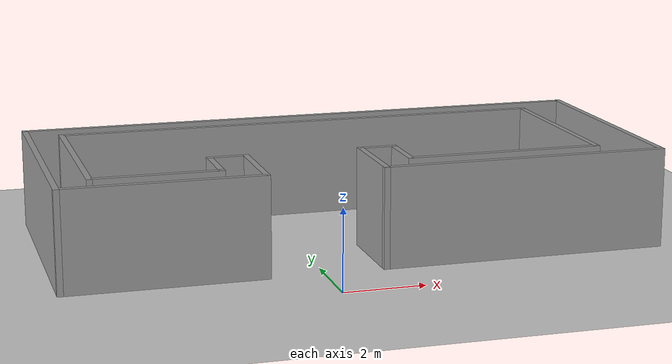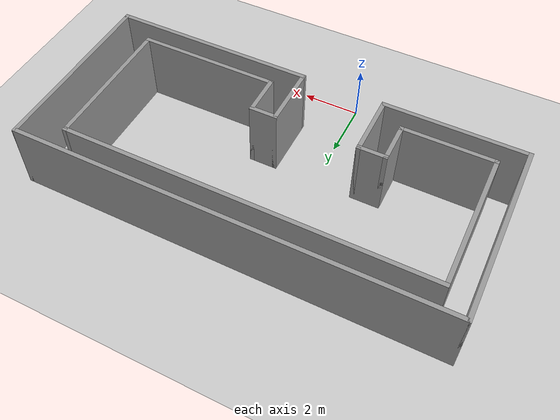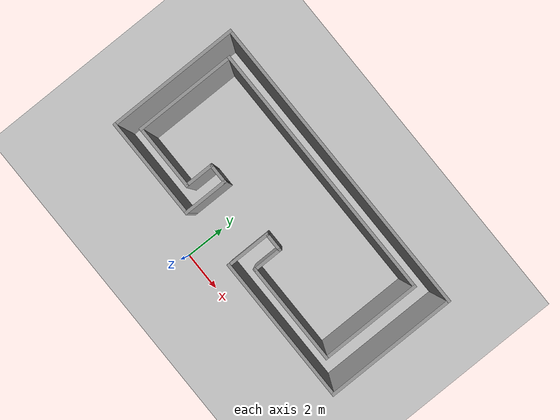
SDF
<sdf version="1.7">
 <world name="default">
  <light name="sun" type="directional">
   <pose>0 0 10 0 -0 0</pose>
   <diffuse>0.8 0.8 0.8 1</diffuse>
   <specular>0.2 0.2 0.2 1</specular>
   <attenuation>
    <range>1000</range>
    <constant>0.9</constant>
    <linear>0.01</linear>
    <quadratic>0.001</quadratic>
   </attenuation>
   <direction>-0.5 0.1 -0.9</direction>
   <spot><inner_angle>0</inner_angle><outer_angle>0</outer_angle><falloff>0</falloff></spot>
  </light>
  <model name="ground_plane">
   <static>1</static>
   <link name="link">
    <collision name="collision">
     <geometry><plane><normal>0 0 1</normal><size>100 100</size></plane></geometry>
     <surface>
      <contact><collide_bitmask>65535</collide_bitmask></contact>
      <friction><ode><mu>100</mu><mu2>50</mu2></ode></friction>
     </surface>
    </collision>
    <visual name="visual">
     <cast_shadows>0</cast_shadows>
     <geometry><plane><normal>0 0 1</normal><size>100 100</size></plane></geometry>
     <material>
      <script><uri>file://media/materials/scripts/gazebo.material</uri><name>Gazebo/Grey</name></script>
     </material>
    </visual>
   </link>
  </model>
  <gravity>0 0 -9.8</gravity>
  <magnetic_field>6e-06 2.3e-05 -4.2e-05</magnetic_field>
  <atmosphere type="adiabatic"/>
  <physics type="ode">
   <max_step_size>0.001</max_step_size>
   <real_time_factor>1</real_time_factor>
   <real_time_update_rate>1000</real_time_update_rate>
  </physics>
  <scene><ambient>0.4 0.4 0.4 1</ambient><background>0.7 0.7 0.7 1</background><shadows>1</shadows></scene>
  <spherical_coordinates>
   <surface_model>EARTH_WGS84</surface_model>
   <latitude_deg>0</latitude_deg>
   <longitude_deg>0</longitude_deg>
   <elevation>0</elevation>
   <heading_deg>0</heading_deg>
  </spherical_coordinates>
  <model name="Ushape2025">
   <pose>1.19635 4.71819 0 0 -0 0</pose>
   <link name="Wall_1">
    <collision name="Wall_1_Collision">
     <geometry><box><size>2.25 0.15 2.5</size></box></geometry>
     <pose>0 0 1.25 0 -0 0</pose>
    </collision>
    <visual name="Wall_1_Visual">
     <pose>0 0 1.25 0 -0 0</pose>
     <geometry><box><size>2.25 0.15 2.5</size></box></geometry>
     <material>
      <script><uri>file://media/materials/scripts/gazebo.material</uri><name>Gazebo/Grey</name></script>
      <ambient>1 1 1 1</ambient>
     </material>
     <meta><layer>0</layer></meta>
    </visual>
    <pose>-2.575 -2.125 0 0 -0 -1.5708</pose>
   </link>
   <link name="Wall_10">
    <collision name="Wall_10_Collision">
     <geometry><box><size>1.5 0.15 2.5</size></box></geometry>
     <pose>0 0 1.25 0 -0 0</pose>
    </collision>
    <visual name="Wall_10_Visual">
     <pose>0 0 1.25 0 -0 0</pose>
     <geometry><box><size>1.5 0.15 2.5</size></box></geometry>
     <material>
      <script><uri>file://media/materials/scripts/gazebo.material</uri><name>Gazebo/Grey</name></script>
      <ambient>1 1 1 1</ambient>
     </material>
     <meta><layer>0</layer></meta>
    </visual>
    <pose>1.175 -1.75 0 0 -0 -1.5708</pose>
   </link>
   <link name="Wall_11">
    <collision name="Wall_11_Collision">
     <geometry><box><size>5 0.15 2.5</size></box></geometry>
     <pose>0 0 1.25 0 -0 0</pose>
    </collision>
    <visual name="Wall_11_Visual">
     <pose>0 0 1.25 0 -0 0</pose>
     <geometry><box><size>5 0.15 2.5</size></box></geometry>
     <material>
      <script><uri>file://media/materials/scripts/gazebo.material</uri><name>Gazebo/Grey</name></script>
      <ambient>1 1 1 1</ambient>
     </material>
     <meta><layer>0</layer></meta>
    </visual>
    <pose>3.6 -2.425 0 0 -0 0</pose>
   </link>
   <link name="Wall_12">
    <collision name="Wall_12_Collision">
     <geometry><box><size>5 0.15 2.5</size></box></geometry>
     <pose>0 0 1.25 0 -0 0</pose>
    </collision>
    <visual name="Wall_12_Visual">
     <pose>0 0 1.25 0 -0 0</pose>
     <geometry><box><size>5 0.15 2.5</size></box></geometry>
     <material>
      <script><uri>file://media/materials/scripts/gazebo.material</uri><name>Gazebo/Grey</name></script>
      <ambient>1 1 1 1</ambient>
     </material>
     <meta><layer>0</layer></meta>
    </visual>
    <pose>6.025 0 0 0 -0 1.5708</pose>
   </link>
   <link name="Wall_13">
    <collision name="Wall_13_Collision">
     <geometry><box><size>12.75 0.15 2.5</size></box></geometry>
     <pose>0 0 1.25 0 -0 0</pose>
    </collision>
    <visual name="Wall_13_Visual">
     <pose>0 0 1.25 0 -0 0</pose>
     <geometry><box><size>12.75 0.15 2.5</size></box></geometry>
     <material>
      <script><uri>file://media/materials/scripts/gazebo.material</uri><name>Gazebo/Grey</name></script>
      <ambient>1 1 1 1</ambient>
     </material>
     <meta><layer>0</layer></meta>
    </visual>
    <pose>-0.275 2.425 0 0 -0 3.14159</pose>
   </link>
   <link name="Wall_14">
    <collision name="Wall_14_Collision">
     <geometry><box><size>5 0.15 2.5</size></box></geometry>
     <pose>0 0 1.25 0 -0 0</pose>
    </collision>
    <visual name="Wall_14_Visual">
     <pose>0 0 1.25 0 -0 0</pose>
     <geometry><box><size>5 0.15 2.5</size></box></geometry>
     <material>
      <script><uri>file://media/materials/scripts/gazebo.material</uri><name>Gazebo/Grey</name></script>
      <ambient>1 1 1 1</ambient>
     </material>
     <meta><layer>0</layer></meta>
    </visual>
    <pose>-6.575 0 0 0 -0 -1.5708</pose>
   </link>
   <link name="Wall_15">
    <collision name="Wall_15_Collision">
     <geometry><box><size>3.25 0.15 2.5</size></box></geometry>
     <pose>0 0 1.25 0 -0 0</pose>
    </collision>
    <visual name="Wall_15_Visual">
     <pose>0 0 1.25 0 -0 0</pose>
     <geometry><box><size>3.25 0.15 2.5</size></box></geometry>
     <material>
      <script><uri>file://media/materials/scripts/gazebo.material</uri><name>Gazebo/Grey</name></script>
      <ambient>1 1 1 1</ambient>
     </material>
     <meta><layer>0</layer></meta>
    </visual>
    <pose>-5.025 -2.425 0 0 -0 0</pose>
   </link>
   <link name="Wall_16">
    <collision name="Wall_16_Collision">
     <geometry><box><size>1.5 0.15 2.5</size></box></geometry>
     <pose>0 0 1.25 0 -0 0</pose>
    </collision>
    <visual name="Wall_16_Visual">
     <pose>0 0 1.25 0 -0 0</pose>
     <geometry><box><size>1.5 0.15 2.5</size></box></geometry>
     <material>
      <script><uri>file://media/materials/scripts/gazebo.material</uri><name>Gazebo/Grey</name></script>
      <ambient>1 1 1 1</ambient>
     </material>
     <meta><layer>0</layer></meta>
    </visual>
    <pose>-3.475 -1.75 0 0 -0 1.5708</pose>
   </link>
   <link name="Wall_17">
    <collision name="Wall_17_Collision">
     <geometry><box><size>1.05 0.15 2.5</size></box></geometry>
     <pose>0 0 1.25 0 -0 0</pose>
    </collision>
    <visual name="Wall_17_Visual">
     <pose>0 0 1.25 0 -0 0</pose>
     <geometry><box><size>1.05 0.15 2.5</size></box></geometry>
     <material>
      <script><uri>file://media/materials/scripts/gazebo.material</uri><name>Gazebo/Grey</name></script>
      <ambient>1 1 1 1</ambient>
     </material>
     <meta><layer>0</layer></meta>
    </visual>
    <pose>-3.025 -1.075 0 0 -0 0</pose>
   </link>
   <link name="Wall_2">
    <collision name="Wall_2_Collision">
     <geometry><box><size>5 0.15 2.5</size></box></geometry>
     <pose>0 0 1.25 0 -0 0</pose>
    </collision>
    <visual name="Wall_2_Visual">
     <pose>0 0 1.25 0 -0 0</pose>
     <geometry><box><size>5 0.15 2.5</size></box></geometry>
     <material>
      <script><uri>file://media/materials/scripts/gazebo.material</uri><name>Gazebo/Grey</name></script>
      <ambient>1 1 1 1</ambient>
     </material>
     <meta><layer>0</layer></meta>
    </visual>
    <pose>-5 -3.175 0 0 -0 3.14159</pose>
   </link>
   <link name="Wall_4">
    <collision name="Wall_4_Collision">
     <geometry><box><size>6.5 0.15 2.5</size></box></geometry>
     <pose>0 0 1.25 0 -0 0</pose>
    </collision>
    <visual name="Wall_4_Visual">
     <pose>0 0 1.25 0 -0 0</pose>
     <geometry><box><size>6.5 0.15 2.5</size></box></geometry>
     <material>
      <script><uri>file://media/materials/scripts/gazebo.material</uri><name>Gazebo/Grey</name></script>
      <ambient>1 1 1 1</ambient>
     </material>
     <meta><layer>0</layer></meta>
    </visual>
    <pose>-7.425 0 0 0 -0 1.5708</pose>
   </link>
   <link name="Wall_5">
    <collision name="Wall_5_Collision">
     <geometry><box><size>15 0.15 2.5</size></box></geometry>
     <pose>0 0 1.25 0 -0 0</pose>
    </collision>
    <visual name="Wall_5_Visual">
     <pose>0 0 1.25 0 -0 0</pose>
     <geometry><box><size>15 0.15 2.5</size></box></geometry>
     <material>
      <script><uri>file://media/materials/scripts/gazebo.material</uri><name>Gazebo/Grey</name></script>
      <ambient>1 1 1 1</ambient>
     </material>
     <meta><layer>0</layer></meta>
    </visual>
    <pose>-0 3.175 0 0 -0 0</pose>
   </link>
   <link name="Wall_6">
    <collision name="Wall_6_Collision">
     <geometry><box><size>6.5 0.15 2.5</size></box></geometry>
     <pose>0 0 1.25 0 -0 0</pose>
    </collision>
    <visual name="Wall_6_Visual">
     <pose>0 0 1.25 0 -0 0</pose>
     <geometry><box><size>6.5 0.15 2.5</size></box></geometry>
     <material>
      <script><uri>file://media/materials/scripts/gazebo.material</uri><name>Gazebo/Grey</name></script>
      <ambient>1 1 1 1</ambient>
     </material>
     <meta><layer>0</layer></meta>
    </visual>
    <pose>7.425 0 0 0 -0 -1.5708</pose>
   </link>
   <link name="Wall_7">
    <collision name="Wall_7_Collision">
     <geometry><box><size>7.25 0.15 2.5</size></box></geometry>
     <pose>0 0 1.25 0 -0 0</pose>
    </collision>
    <visual name="Wall_7_Visual">
     <pose>0 0 1.25 0 -0 0</pose>
     <geometry><box><size>7.25 0.15 2.5</size></box></geometry>
     <material>
      <script><uri>file://media/materials/scripts/gazebo.material</uri><name>Gazebo/Grey</name></script>
      <ambient>1 1 1 1</ambient>
     </material>
     <meta><layer>0</layer></meta>
    </visual>
    <pose>3.875 -3.175 0 0 -0 3.14159</pose>
   </link>
   <link name="Wall_8">
    <collision name="Wall_8_Collision">
     <geometry><box><size>2.25 0.15 2.5</size></box></geometry>
     <pose>0 0 1.25 0 -0 0</pose>
    </collision>
    <visual name="Wall_8_Visual">
     <pose>0 0 1.25 0 -0 0</pose>
     <geometry><box><size>2.25 0.15 2.5</size></box></geometry>
     <material>
      <script><uri>file://media/materials/scripts/gazebo.material</uri><name>Gazebo/Grey</name></script>
      <ambient>1 1 1 1</ambient>
     </material>
     <meta><layer>0</layer></meta>
    </visual>
    <pose>0.325 -2.125 0 0 -0 1.5708</pose>
   </link>
   <link name="Wall_9">
    <collision name="Wall_9_Collision">
     <geometry><box><size>1 0.15 2.5</size></box></geometry>
     <pose>0 0 1.25 0 -0 0</pose>
    </collision>
    <visual name="Wall_9_Visual">
     <pose>0 0 1.25 0 -0 0</pose>
     <geometry><box><size>1 0.15 2.5</size></box></geometry>
     <material>
      <script><uri>file://media/materials/scripts/gazebo.material</uri><name>Gazebo/Grey</name></script>
      <ambient>1 1 1 1</ambient>
     </material>
     <meta><layer>0</layer></meta>
    </visual>
    <pose>0.75 -1.075 0 0 -0 0</pose>
   </link>
   <static>1</static>
  </model>
 </world>
</sdf>
